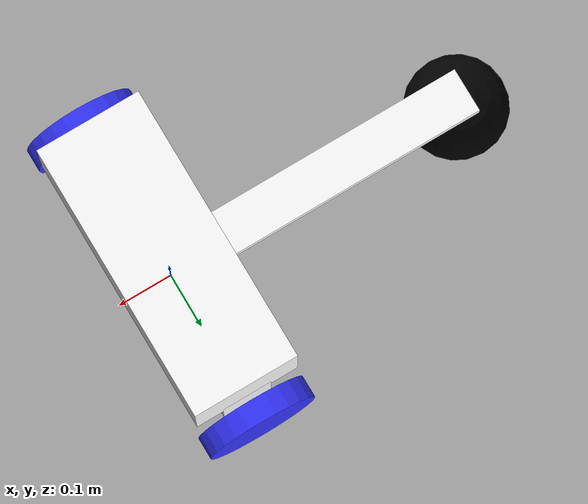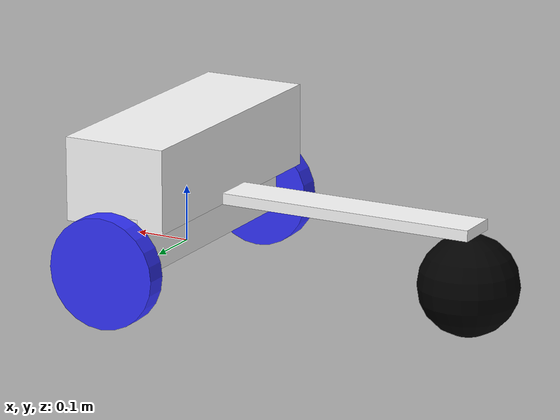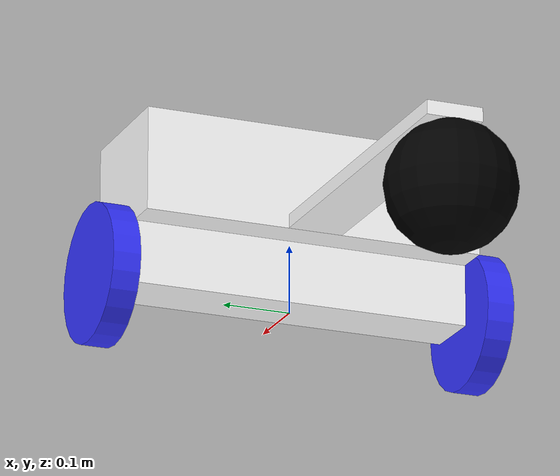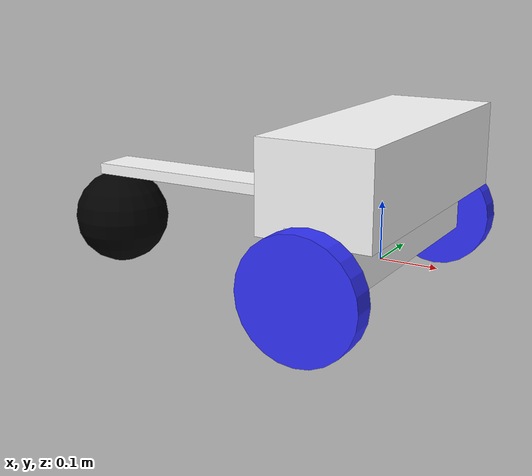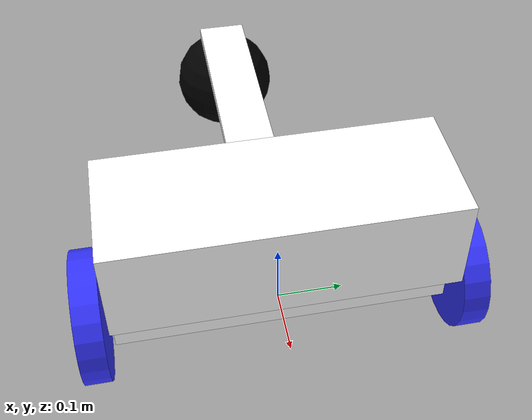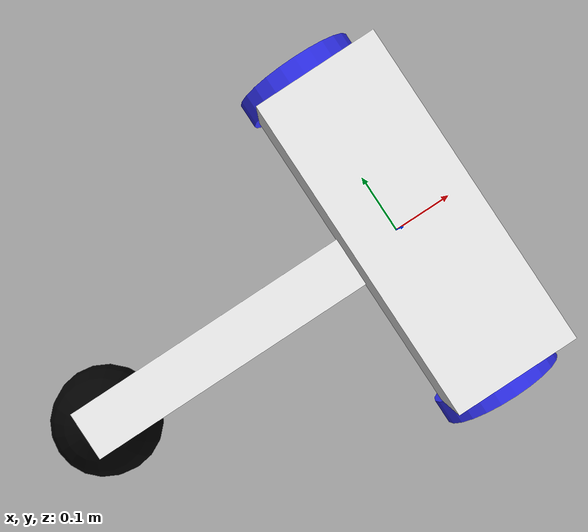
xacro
<?xml version="1.0"?>
<robot xmlns:xacro="http://www.ros.org/wiki/xacro"  >

    <xacro:include filename="inertial_macros.xacro" />

    <material name="white">
        <color rgba="1 1 1 1" />
    </material>

    <material name="orange">
        <color rgba="1 0.3 0.1 1" />
    </material>

    <material name="blue">
        <color rgba="0.2 0.2 1 1" />
    </material>

    <material name="black">
        <color rgba="0 0 0 1" />
    </material>

<!-- Base link-->
    <link name="base_link">

    </link>

<!-- Base_Footprint link-->
    <joint name="base_footprint_joint" type="fixed">
        <parent link="base_link"/>
        <child link="base_footprint"/>
        <origin xyz="0 0 0" rpy="0 0 0"/>
    </joint>

    <link name="base_footprint">
    </link>

<!-- chasis link-->
    <joint name="chassis_joint" type="fixed">
        <parent link="base_link"/>
        <child link="chassis"/>
        <origin xyz="0.045 0 0"/>
    </joint>

    <link name="chassis">
        <visual>
            <origin xyz="-0.045 0.0 0.165" />
            <geometry>
                <box size="0.19 0.5 0.15"/>
            </geometry>
            <material name="white" />
        </visual>

        <visual>
            <origin xyz="-0.33 0.0 0.10" />
            <geometry>
                <box size="0.57 0.08 0.02"/>
            </geometry>
            <material name="white" />
        </visual>

        <visual>
            <origin xyz="-0.045 0.0 0.055" />
            <geometry>
                <box size="0.09 0.5 0.11"/>
            </geometry>
            <material name="white" />
        </visual>

        <collision>
            <origin xyz="-0.045 0.0 0.165" />
            <geometry>
                <box size="0.19 0.5 0.15"/>
            </geometry>
        </collision>

        <visual>
            <origin xyz="-0.33 0.0 0.10" />
            <geometry>
                <box size="0.57 0.08 0.02"/>
            </geometry>
            <material name="white" />
        </visual>

        <collision>
            <origin xyz="-0.045 0.0 0.055" />
            <geometry>
                <box size="0.09 0.5 0.11"/>
            </geometry>
        </collision>

        <inertial>
        <origin xyz="-0.20 0.0 0" rpy="0 0 0"/>
        <mass value="1.9809343e+01"/>
        <inertia ixx="4.914e-01" iyy="2.317e-01" izz="5.354e-01"
                ixy="3.367e-16" ixz="-7.465e-03" iyz="1.793e-16"/>
        </inertial>
    </link>

    <gazebo reference="chassis">
        <material>Gazebo/White</material>
    </gazebo>

<!-- right wheel link-->
    <joint name="right_wheel_joint" type="continuous">
        <parent link="base_link"/>
        <child link="right_wheel"/>
        <origin xyz="0 -0.28 0.02" rpy="${pi/2} 0 0"/>
        <axis xyz="0 0 -1"/>
    </joint>

    <link name="right_wheel">
        <visual>
            <geometry>
                <cylinder radius="0.1" length="0.04"/>
            </geometry>
            <material name="blue"/>

        </visual>

        <collision>
            <geometry>
                <cylinder radius="0.1" length="0.04"/>
            </geometry>

        </collision>
        <xacro:inertial_cylinder mass="0.1" length="0.04" radius="0.1" >
            <origin xyz="0 0 0" rpy="0 0 0"/>
        </xacro:inertial_cylinder>
    </link>

    <gazebo reference="right_wheel">
        <material>Gazebo/Blue</material>
    </gazebo>

<!-- left wheel link-->
    <joint name="left_wheel_joint" type="continuous">
        <parent link="base_link"/>
        <child link="left_wheel"/>
        <origin xyz="0.0 0.28 0.02" rpy="${-pi/2}  0.0 0.0"/>
        <axis xyz="0 0 1"/>
    </joint>

    <link name="left_wheel">
        <visual>
            <geometry>
                <cylinder radius="0.1" length="0.04"/>
            </geometry>
            <material name="blue"/>

        </visual>

        <collision>
            <geometry>
                <cylinder radius="0.1" length="0.04"/>
            </geometry>
        </collision>
        <xacro:inertial_cylinder mass="0.1" length="0.04" radius="0.1" >
            <origin xyz="0.0 0.0 0.0" rpy="0.0 0.0 0.0"/>
        </xacro:inertial_cylinder>
    </link>

    <gazebo reference="left_wheel">
        <material>Gazebo/Blue</material>
    </gazebo>

<!-- caster wheel link-->
    <joint name="caster_wheel_joint" type="fixed">
        <parent link="chassis"/>
        <child link="caster_wheel"/>
        <origin xyz="-0.6 0 0.00" />
    </joint>

    <link name="caster_wheel">
        <visual>
            <geometry>
                <sphere radius="0.09"/>
            </geometry>
            <material name="black"/>

        </visual>
        <collision>
            <geometry>
                <sphere radius="0.09"/>
            </geometry>

        </collision>

        <xacro:inertial_sphere mass="0.1" radius="0.05" >
            <origin xyz="0.0 0.0 0.0" rpy="0.0 0.0 0.0"/>
        </xacro:inertial_sphere>
    </link>

    <gazebo reference="caster_wheel">
        <material>Gazebo/Black</material>
        <mu1 value="0.001"/>
        <mu2 value="0.001"/>
    </gazebo>

</robot>
